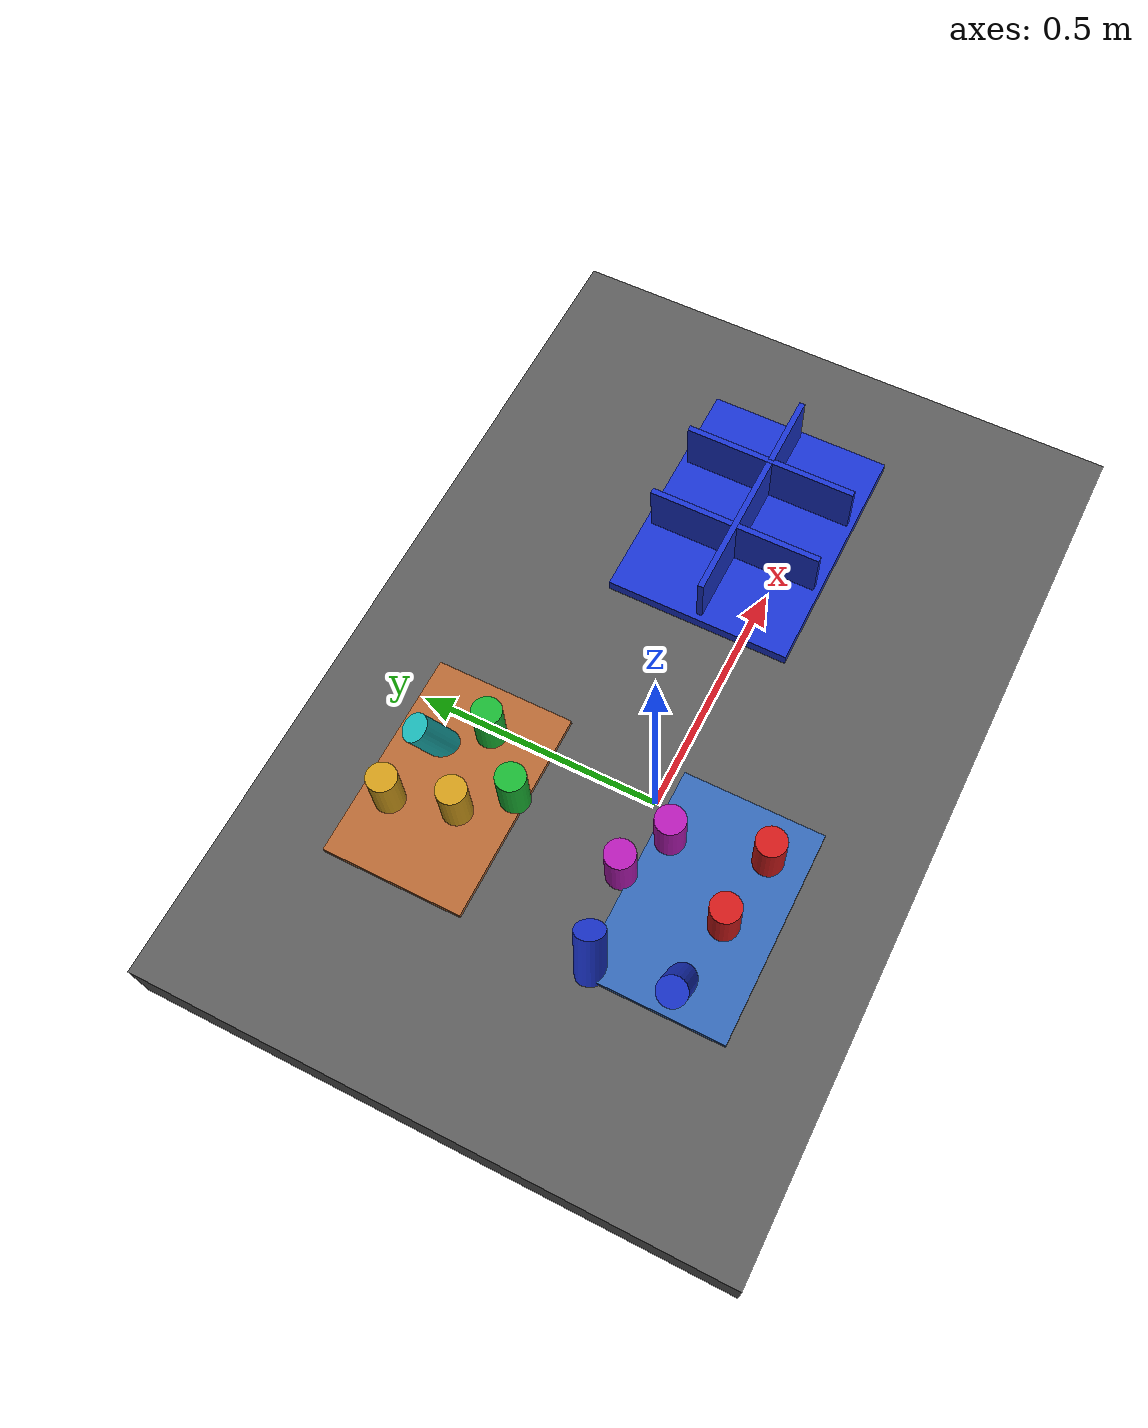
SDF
<?xml version="1.0" ?>
<sdf version="1.9">
  <!-- Standalone M1B scene.  The controller-backed Panda is spawned by the
       existing launch path; this file never alters the frozen M1A cube world. -->
  <world name="industrial_cylinder_v1">
    <physics name="bullet" type="bullet"><max_step_size>0.001</max_step_size><real_time_factor>1.0</real_time_factor></physics>
    <plugin name="gz::sim::systems::Physics" filename="gz-sim-physics-system"><engine><filename>gz-physics-bullet-featherstone-plugin</filename></engine></plugin>
    <plugin name="gz::sim::systems::UserCommands" filename="gz-sim-user-commands-system"/>
    <plugin name="gz::sim::systems::SceneBroadcaster" filename="gz-sim-scene-broadcaster-system"/>
    <plugin name="gz::sim::systems::Sensors" filename="gz-sim-sensors-system"><render_engine>ogre2</render_engine></plugin>
    <gravity>0 0 -9.81</gravity>
    <light type="directional" name="industrial_light"><pose>0 0 5 0 0 0</pose><direction>-0.3 0.2 -0.9</direction><diffuse>0.9 0.9 0.9 1</diffuse></light>
    <model name="industrial_work_table"><static>true</static><link name="link"><pose>0 0 0.4 0 0 0</pose><collision name="collision"><geometry><box><size>1.5 1.0 0.1</size></box></geometry></collision><visual name="visual"><geometry><box><size>1.5 1.0 0.1</size></box></geometry><material><diffuse>0.35 0.35 0.35 1</diffuse></material></visual></link></model>
    <model name="camera_fixture"><static>true</static><link name="camera_rgbd"><pose>-0.80 -0.80 1.40 0 0.77 0.93</pose><sensor name="front_rgbd" type="rgbd_camera"><always_on>1</always_on><update_rate>15</update_rate><topic>/xh/camera/rgbd</topic><camera><horizontal_fov>1.047</horizontal_fov><image><width>640</width><height>480</height><format>R8G8B8</format></image><clip><near>0.1</near><far>4.0</far></clip></camera></sensor></link></model>
    <model name="incoming_zone_a"><static>true</static><link name="link"><pose>-0.28 -0.22 0.455 0 0 0</pose><visual name="visual"><geometry><box><size>0.36 0.24 0.01</size></box></geometry><material><diffuse>0.2 0.4 0.7 1</diffuse></material></visual></link></model>
    <model name="incoming_zone_b"><static>true</static><link name="link"><pose>-0.28 0.22 0.455 0 0 0</pose><visual name="visual"><geometry><box><size>0.36 0.24 0.01</size></box></geometry><material><diffuse>0.7 0.4 0.2 1</diffuse></material></visual></link></model>
    <!-- M1B_RANDOM_PARTS_BEGIN -->
    <model name="cylinder_01"><pose>-0.1771 -0.2779 0.5000 0.0000 0.0000 -1.1595</pose><link name="link"><inertial><mass>0.06</mass></inertial><collision name="collision"><geometry><cylinder><radius>0.025</radius><length>0.09</length></cylinder></geometry></collision><visual name="visual"><geometry><cylinder><radius>0.025</radius><length>0.09</length></cylinder></geometry><material><diffuse>0.800 0.100 0.100 1</diffuse><specular>0.15 0.15 0.15 1</specular></material></visual></link></model>
    <model name="cylinder_02"><pose>-0.2565 0.1168 0.5000 3.1416 0.0000 -0.5608</pose><link name="link"><inertial><mass>0.06</mass></inertial><collision name="collision"><geometry><cylinder><radius>0.025</radius><length>0.09</length></cylinder></geometry></collision><visual name="visual"><geometry><cylinder><radius>0.025</radius><length>0.09</length></cylinder></geometry><material><diffuse>0.100 0.700 0.200 1</diffuse><specular>0.15 0.15 0.15 1</specular></material></visual></link></model>
    <model name="cylinder_03"><pose>-0.4292 -0.1047 0.4800 0.4500 -0.3000 2.5525</pose><link name="link"><inertial><mass>0.06</mass></inertial><collision name="collision"><geometry><cylinder><radius>0.025</radius><length>0.09</length></cylinder></geometry></collision><visual name="visual"><geometry><cylinder><radius>0.025</radius><length>0.09</length></cylinder></geometry><material><diffuse>0.100 0.200 0.800 1</diffuse><specular>0.15 0.15 0.15 1</specular></material></visual></link></model>
    <model name="cylinder_04"><pose>-0.3427 0.2903 0.5000 0.0000 0.0000 0.8761</pose><link name="link"><inertial><mass>0.06</mass></inertial><collision name="collision"><geometry><cylinder><radius>0.025</radius><length>0.09</length></cylinder></geometry></collision><visual name="visual"><geometry><cylinder><radius>0.025</radius><length>0.09</length></cylinder></geometry><material><diffuse>0.800 0.600 0.100 1</diffuse><specular>0.15 0.15 0.15 1</specular></material></visual></link></model>
    <model name="cylinder_05"><pose>-0.2118 -0.1291 0.5000 3.1416 0.0000 -2.2556</pose><link name="link"><inertial><mass>0.06</mass></inertial><collision name="collision"><geometry><cylinder><radius>0.025</radius><length>0.09</length></cylinder></geometry></collision><visual name="visual"><geometry><cylinder><radius>0.025</radius><length>0.09</length></cylinder></geometry><material><diffuse>0.700 0.100 0.700 1</diffuse><specular>0.15 0.15 0.15 1</specular></material></visual></link></model>
    <model name="cylinder_06"><pose>-0.2296 0.2765 0.4800 0.4500 -0.3000 -2.0859</pose><link name="link"><inertial><mass>0.06</mass></inertial><collision name="collision"><geometry><cylinder><radius>0.025</radius><length>0.09</length></cylinder></geometry></collision><visual name="visual"><geometry><cylinder><radius>0.025</radius><length>0.09</length></cylinder></geometry><material><diffuse>0.100 0.700 0.700 1</diffuse><specular>0.15 0.15 0.15 1</specular></material></visual></link></model>
    <model name="cylinder_07"><pose>-0.2985 -0.2605 0.5000 0.0000 0.0000 2.7711</pose><link name="link"><inertial><mass>0.06</mass></inertial><collision name="collision"><geometry><cylinder><radius>0.025</radius><length>0.09</length></cylinder></geometry></collision><visual name="visual"><geometry><cylinder><radius>0.025</radius><length>0.09</length></cylinder></geometry><material><diffuse>0.800 0.100 0.100 1</diffuse><specular>0.15 0.15 0.15 1</specular></material></visual></link></model>
    <model name="cylinder_08"><pose>-0.1763 0.2025 0.5000 3.1416 0.0000 -2.3254</pose><link name="link"><inertial><mass>0.06</mass></inertial><collision name="collision"><geometry><cylinder><radius>0.025</radius><length>0.09</length></cylinder></geometry></collision><visual name="visual"><geometry><cylinder><radius>0.025</radius><length>0.09</length></cylinder></geometry><material><diffuse>0.100 0.700 0.200 1</diffuse><specular>0.15 0.15 0.15 1</specular></material></visual></link></model>
    <model name="cylinder_09"><pose>-0.4147 -0.2406 0.4800 0.4500 -0.3000 -0.9605</pose><link name="link"><inertial><mass>0.06</mass></inertial><collision name="collision"><geometry><cylinder><radius>0.025</radius><length>0.09</length></cylinder></geometry></collision><visual name="visual"><geometry><cylinder><radius>0.025</radius><length>0.09</length></cylinder></geometry><material><diffuse>0.100 0.200 0.800 1</diffuse><specular>0.15 0.15 0.15 1</specular></material></visual></link></model>
    <model name="cylinder_10"><pose>-0.3142 0.1866 0.5000 0.0000 0.0000 3.0433</pose><link name="link"><inertial><mass>0.06</mass></inertial><collision name="collision"><geometry><cylinder><radius>0.025</radius><length>0.09</length></cylinder></geometry></collision><visual name="visual"><geometry><cylinder><radius>0.025</radius><length>0.09</length></cylinder></geometry><material><diffuse>0.800 0.600 0.100 1</diffuse><specular>0.15 0.15 0.15 1</specular></material></visual></link></model>
    <model name="cylinder_11"><pose>-0.2930 -0.0862 0.5000 3.1416 0.0000 0.4742</pose><link name="link"><inertial><mass>0.06</mass></inertial><collision name="collision"><geometry><cylinder><radius>0.025</radius><length>0.09</length></cylinder></geometry></collision><visual name="visual"><geometry><cylinder><radius>0.025</radius><length>0.09</length></cylinder></geometry><material><diffuse>0.700 0.100 0.700 1</diffuse><specular>0.15 0.15 0.15 1</specular></material></visual></link></model>
    <!-- M1B_RANDOM_PARTS_END -->
    <model name="blue_partition_bin"><static>true</static><pose>0.36 0 0.45 0 0 0</pose><link name="link"><collision name="floor"><pose>0 0 0.01 0 0 0</pose><geometry><box><size>0.42 0.32 0.02</size></box></geometry></collision><visual name="floor_visual"><pose>0 0 0.01 0 0 0</pose><geometry><box><size>0.42 0.32 0.02</size></box></geometry><material><diffuse>0.1 0.2 0.8 1</diffuse></material></visual><visual name="row_divider"><pose>0 0 0.06 0 0 0</pose><geometry><box><size>0.40 0.01 0.10</size></box></geometry><material><diffuse>0.1 0.2 0.8 1</diffuse></material></visual><visual name="col_divider_a"><pose>-0.07 0 0.06 0 0 0</pose><geometry><box><size>0.01 0.30 0.10</size></box></geometry><material><diffuse>0.1 0.2 0.8 1</diffuse></material></visual><visual name="col_divider_b"><pose>0.07 0 0.06 0 0 0</pose><geometry><box><size>0.01 0.30 0.10</size></box></geometry><material><diffuse>0.1 0.2 0.8 1</diffuse></material></visual></link></model>
    <!-- Reserved only: second table, bin transport corridor, stackable-bin
         collision volume, and second arm mounting namespace. -->
  </world>
</sdf>
